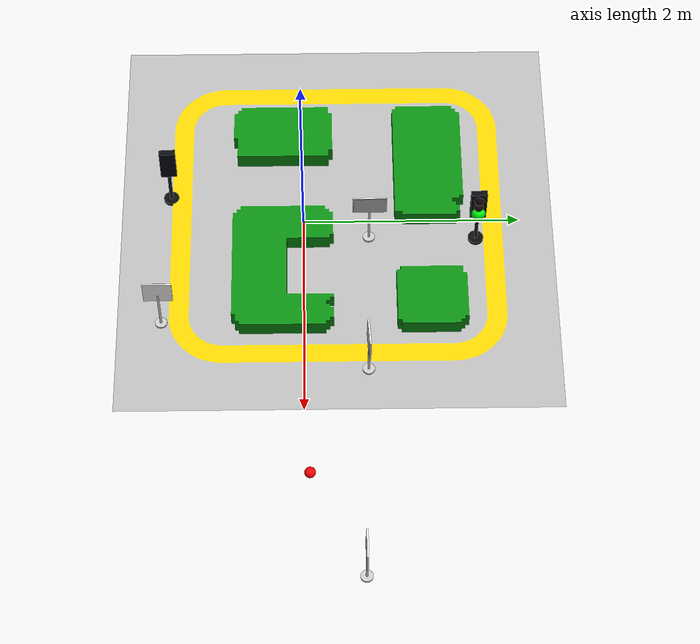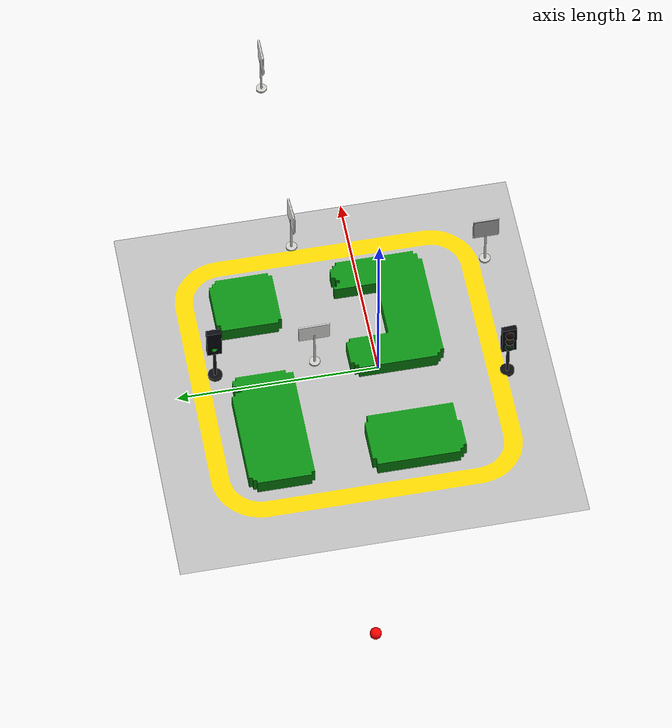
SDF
<sdf version="1.7">
 <world name="autonomous_map_3d_world">
  <model name="autonomous_map_3d">
   <static>1</static>
   <link name="map_link">
    <visual name="textured_map_visual">
     <geometry><mesh><uri>model://autonomous_map_3d/meshes/autonomous_map_3d.dae</uri></mesh></geometry>
    </visual>
    <collision name="floor_collision">
     <pose>0 0 -0.01 0 -0 0</pose>
     <geometry><box><size>6 6 0.02</size></box></geometry>
    </collision>
   </link>
   <pose>-0.002 0.309909 0 0 -0 0</pose>
  </model>
  <model name="traffic_light_top_island">
   <static>1</static>
   <link name="traffic_light_link">
    <visual name="base_visual">
     <pose>0 0 0.015 0 -0 0</pose>
     <geometry><cylinder><radius>0.07</radius><length>0.03</length></cylinder></geometry>
     <material><ambient>0.03 0.03 0.04 1</ambient><diffuse>0.04 0.04 0.05 1</diffuse></material>
    </visual>
    <visual name="pole_visual">
     <pose>0 0 0.25 0 -0 0</pose>
     <geometry><cylinder><radius>0.016</radius><length>0.47</length></cylinder></geometry>
     <material><ambient>0.08 0.08 0.1 1</ambient><diffuse>0.1 0.1 0.13 1</diffuse></material>
    </visual>
    <visual name="housing_visual">
     <pose>0 -0.006 0.565 0 -0 0</pose>
     <geometry><box><size>0.145 0.055 0.34</size></box></geometry>
     <material><ambient>0.02 0.025 0.04 1</ambient><diffuse>0.03 0.035 0.06 1</diffuse></material>
    </visual>
    <visual name="red_lens_visual">
     <pose>0 -0.038 0.66 0 -0 0</pose>
     <geometry><sphere><radius>0.043</radius></sphere></geometry>
     <material>
      <ambient>0.035 0.002 0.002 1</ambient>
      <diffuse>0.060 0.004 0.004 1</diffuse>
      <emissive>0 0 0 1</emissive>
     </material>
    </visual>
    <visual name="yellow_lens_visual">
     <pose>0 -0.038 0.565 0 -0 0</pose>
     <geometry><sphere><radius>0.043</radius></sphere></geometry>
     <material>
      <ambient>0.035 0.025 0.002 1</ambient>
      <diffuse>0.060 0.045 0.004 1</diffuse>
      <emissive>0 0 0 1</emissive>
     </material>
    </visual>
    <visual name="green_lens_visual">
     <pose>0 -0.038 0.47 0 -0 0</pose>
     <geometry><sphere><radius>0.043</radius></sphere></geometry>
     <material>
      <ambient>0.002 0.040 0.004 1</ambient>
      <diffuse>0.004 0.078 0.010 1</diffuse>
      <emissive>0 0 0 1</emissive>
     </material>
    </visual>
   </link>
   <pose>0.203395 1.58911 0 0 -0 1.5869</pose>
  </model>
  <model name="traffic_light_lower_island">
   <static>1</static>
   <link name="traffic_light_link">
    <visual name="base_visual">
     <pose>0 0 0.015 0 -0 0</pose>
     <geometry><cylinder><radius>0.07</radius><length>0.03</length></cylinder></geometry>
     <material><ambient>0.03 0.03 0.04 1</ambient><diffuse>0.04 0.04 0.05 1</diffuse></material>
    </visual>
    <visual name="pole_visual">
     <pose>0 0 0.25 0 -0 0</pose>
     <geometry><cylinder><radius>0.016</radius><length>0.47</length></cylinder></geometry>
     <material><ambient>0.08 0.08 0.1 1</ambient><diffuse>0.1 0.1 0.13 1</diffuse></material>
    </visual>
    <visual name="housing_visual">
     <pose>0 -0.006 0.565 0 -0 0</pose>
     <geometry><box><size>0.145 0.055 0.34</size></box></geometry>
     <material><ambient>0.02 0.025 0.04 1</ambient><diffuse>0.03 0.035 0.06 1</diffuse></material>
    </visual>
    <visual name="red_lens_visual">
     <pose>0 -0.038 0.66 0 -0 0</pose>
     <geometry><sphere><radius>0.043</radius></sphere></geometry>
     <material>
      <ambient>0.035 0.002 0.002 1</ambient>
      <diffuse>0.060 0.004 0.004 1</diffuse>
      <emissive>0 0 0 1</emissive>
     </material>
    </visual>
    <visual name="yellow_lens_visual">
     <pose>0 -0.038 0.565 0 -0 0</pose>
     <geometry><sphere><radius>0.043</radius></sphere></geometry>
     <material>
      <ambient>0.035 0.025 0.002 1</ambient>
      <diffuse>0.060 0.045 0.004 1</diffuse>
      <emissive>0 0 0 1</emissive>
     </material>
    </visual>
    <visual name="green_lens_visual">
     <pose>0 -0.038 0.47 0 -0 0</pose>
     <geometry><sphere><radius>0.043</radius></sphere></geometry>
     <material>
      <ambient>0.002 0.040 0.004 1</ambient>
      <diffuse>0.004 0.078 0.010 1</diffuse>
      <emissive>0 0 0 1</emissive>
     </material>
    </visual>
   </link>
   <pose>-0.270238 -1.23571 0 0 -0 -1.52354</pose>
  </model>
  <model name="traffic_light_top_island_red_active_lamp">
   <static>0</static>
   <link name="lamp_link">
    <gravity>0</gravity>
    <visual name="lamp_visual">
     <geometry><sphere><radius>0.065</radius></sphere></geometry>
     <material>
      <ambient>1.0 0.0 0.0 1</ambient>
      <diffuse>1.0 0.0 0.0 1</diffuse>
      <emissive>8.0 0.0 0.0 1</emissive>
     </material>
    </visual>
    <kinematic>1</kinematic>
   </link>
   <pose>0 0 -5 0 -0 0</pose>
  </model>
  <model name="traffic_light_top_island_yellow_active_lamp">
   <static>0</static>
   <link name="lamp_link">
    <gravity>0</gravity>
    <visual name="lamp_visual">
     <geometry><sphere><radius>0.065</radius></sphere></geometry>
     <material>
      <ambient>1.0 0.72 0.0 1</ambient>
      <diffuse>1.0 0.72 0.0 1</diffuse>
      <emissive>8.0 5.2 0.0 1</emissive>
     </material>
    </visual>
    <kinematic>1</kinematic>
   </link>
   <pose>0 0 -5 0 -0 0</pose>
  </model>
  <model name="traffic_light_top_island_green_active_lamp">
   <static>0</static>
   <link name="lamp_link">
    <gravity>0</gravity>
    <visual name="lamp_visual">
     <geometry><sphere><radius>0.065</radius></sphere></geometry>
     <material>
      <ambient>0.0 1.0 0.05 1</ambient>
      <diffuse>0.0 1.0 0.05 1</diffuse>
      <emissive>0.0 8.0 0.30 1</emissive>
     </material>
    </visual>
    <kinematic>1</kinematic>
   </link>
   <pose>0.2414 1.5897 0.47 0 -0 0</pose>
  </model>
  <model name="traffic_light_lower_island_red_active_lamp">
   <static>0</static>
   <link name="lamp_link">
    <gravity>0</gravity>
    <visual name="lamp_visual">
     <geometry><sphere><radius>0.065</radius></sphere></geometry>
     <material>
      <ambient>1.0 0.0 0.0 1</ambient>
      <diffuse>1.0 0.0 0.0 1</diffuse>
      <emissive>8.0 0.0 0.0 1</emissive>
     </material>
    </visual>
    <kinematic>1</kinematic>
   </link>
   <pose>0 0 -5 0 -0 0</pose>
  </model>
  <model name="traffic_light_lower_island_yellow_active_lamp">
   <static>0</static>
   <link name="lamp_link">
    <gravity>0</gravity>
    <visual name="lamp_visual">
     <geometry><sphere><radius>0.065</radius></sphere></geometry>
     <material>
      <ambient>1.0 0.72 0.0 1</ambient>
      <diffuse>1.0 0.72 0.0 1</diffuse>
      <emissive>8.0 5.2 0.0 1</emissive>
     </material>
    </visual>
    <kinematic>1</kinematic>
   </link>
   <pose>0 0 -5 0 -0 0</pose>
  </model>
  <model name="sign_turn_right_top_right_island">
   <static>1</static>
   <link name="sign_link">
    <visual name="base_visual">
     <pose>0 0 0.01 0 -0 0</pose>
     <geometry><cylinder><radius>0.055</radius><length>0.02</length></cylinder></geometry>
     <material><ambient>0.72 0.72 0.7 1</ambient><diffuse>0.78 0.78 0.76 1</diffuse></material>
    </visual>
    <visual name="pole_visual">
     <pose>0 0 0.245 0 -0 0</pose>
     <geometry><cylinder><radius>0.011</radius><length>0.47</length></cylinder></geometry>
     <material><ambient>0.72 0.72 0.7 1</ambient><diffuse>0.82 0.82 0.8 1</diffuse></material>
    </visual>
    <visual name="back_plate_visual">
     <pose>0 0 0.52 0 -0 0</pose>
     <geometry><box><size>0.26 0.014 0.26</size></box></geometry>
     <material><ambient>0.96 0.96 0.94 1</ambient><diffuse>0.98 0.98 0.96 1</diffuse></material>
    </visual>
    <visual name="sign_face_visual">
     <pose>0 -0.011 0.52 0 -0 0</pose>
     <geometry><box><size>0.246 0.004 0.246</size></box></geometry>
     <material>
      <script>
       <uri>model://road_sign_turn_right/materials/scripts</uri>
       <uri>model://road_sign_turn_right/materials/textures</uri>
       <name>RoadSign/TurnRight</name>
      </script>
     </material>
    </visual>
   </link>
   <pose>3.61375 0.522323 0 0 -0 0.001575</pose>
  </model>
  <model name="sign_speed_limit_left_island">
   <static>1</static>
   <link name="sign_link">
    <visual name="base_visual">
     <pose>0 0 0.01 0 -0 0</pose>
     <geometry><cylinder><radius>0.055</radius><length>0.02</length></cylinder></geometry>
     <material><ambient>0.72 0.72 0.7 1</ambient><diffuse>0.78 0.78 0.76 1</diffuse></material>
    </visual>
    <visual name="pole_visual">
     <pose>0 0 0.245 0 -0 0</pose>
     <geometry><cylinder><radius>0.011</radius><length>0.47</length></cylinder></geometry>
     <material><ambient>0.72 0.72 0.7 1</ambient><diffuse>0.82 0.82 0.8 1</diffuse></material>
    </visual>
    <visual name="back_plate_visual">
     <pose>0 0 0.52 0 -0 0</pose>
     <geometry><box><size>0.26 0.014 0.26</size></box></geometry>
     <material><ambient>0.96 0.96 0.94 1</ambient><diffuse>0.98 0.98 0.96 1</diffuse></material>
    </visual>
    <visual name="sign_face_visual">
     <pose>0 -0.011 0.52 0 -0 0</pose>
     <geometry><box><size>0.246 0.004 0.246</size></box></geometry>
     <material>
      <script>
       <uri>model://road_sign_speed_limit/materials/scripts</uri>
       <uri>model://road_sign_speed_limit/materials/textures</uri>
       <name>RoadSign/SpeedLimit</name>
      </script>
     </material>
    </visual>
   </link>
   <pose>1.09534 -1.29069 0.004853 0 0 -1.5708</pose>
  </model>
  <model name="sign_parking_lower_right_island">
   <static>1</static>
   <link name="sign_link">
    <visual name="base_visual">
     <pose>0 0 0.01 0 -0 0</pose>
     <geometry><cylinder><radius>0.055</radius><length>0.02</length></cylinder></geometry>
     <material><ambient>0.72 0.72 0.7 1</ambient><diffuse>0.78 0.78 0.76 1</diffuse></material>
    </visual>
    <visual name="pole_visual">
     <pose>0 0 0.245 0 -0 0</pose>
     <geometry><cylinder><radius>0.011</radius><length>0.47</length></cylinder></geometry>
     <material><ambient>0.72 0.72 0.7 1</ambient><diffuse>0.82 0.82 0.8 1</diffuse></material>
    </visual>
    <visual name="back_plate_visual">
     <pose>0 0 0.52 0 -0 0</pose>
     <geometry><box><size>0.31 0.014 0.21</size></box></geometry>
     <material><ambient>0.96 0.96 0.94 1</ambient><diffuse>0.98 0.98 0.96 1</diffuse></material>
    </visual>
    <visual name="sign_face_visual">
     <pose>0 -0.011 0.52 0 -0 0</pose>
     <geometry><box><size>0.294 0.004 0.196</size></box></geometry>
     <material>
      <script>
       <uri>model://road_sign_parking/materials/scripts</uri>
       <uri>model://road_sign_parking/materials/textures</uri>
       <name>RoadSign/Parking</name>
      </script>
     </material>
    </visual>
   </link>
   <pose>0.182342 0.601383 0.003233 -0.012524 0.007219 1.58069</pose>
  </model>
  <model name="sign_turn_left_lower_left_island">
   <static>1</static>
   <link name="sign_link">
    <visual name="base_visual">
     <pose>0 0 0.01 0 -0 0</pose>
     <geometry><cylinder><radius>0.055</radius><length>0.02</length></cylinder></geometry>
     <material><ambient>0.72 0.72 0.7 1</ambient><diffuse>0.78 0.78 0.76 1</diffuse></material>
    </visual>
    <visual name="pole_visual">
     <pose>0 0 0.245 0 -0 0</pose>
     <geometry><cylinder><radius>0.011</radius><length>0.47</length></cylinder></geometry>
     <material><ambient>0.72 0.72 0.7 1</ambient><diffuse>0.82 0.82 0.8 1</diffuse></material>
    </visual>
    <visual name="back_plate_visual">
     <pose>0 0 0.52 0 -0 0</pose>
     <geometry><box><size>0.26 0.014 0.26</size></box></geometry>
     <material><ambient>0.96 0.96 0.94 1</ambient><diffuse>0.98 0.98 0.96 1</diffuse></material>
    </visual>
    <visual name="sign_face_visual">
     <pose>0 -0.011 0.52 0 -0 0</pose>
     <geometry><box><size>0.246 0.004 0.246</size></box></geometry>
     <material>
      <script>
       <uri>model://road_sign_turn_left/materials/scripts</uri>
       <uri>model://road_sign_turn_left/materials/textures</uri>
       <name>RoadSign/TurnLeft</name>
      </script>
     </material>
    </visual>
   </link>
   <pose>1.5957 0.576516 0 0 -0 0.055069</pose>
  </model>
 </world>
</sdf>
